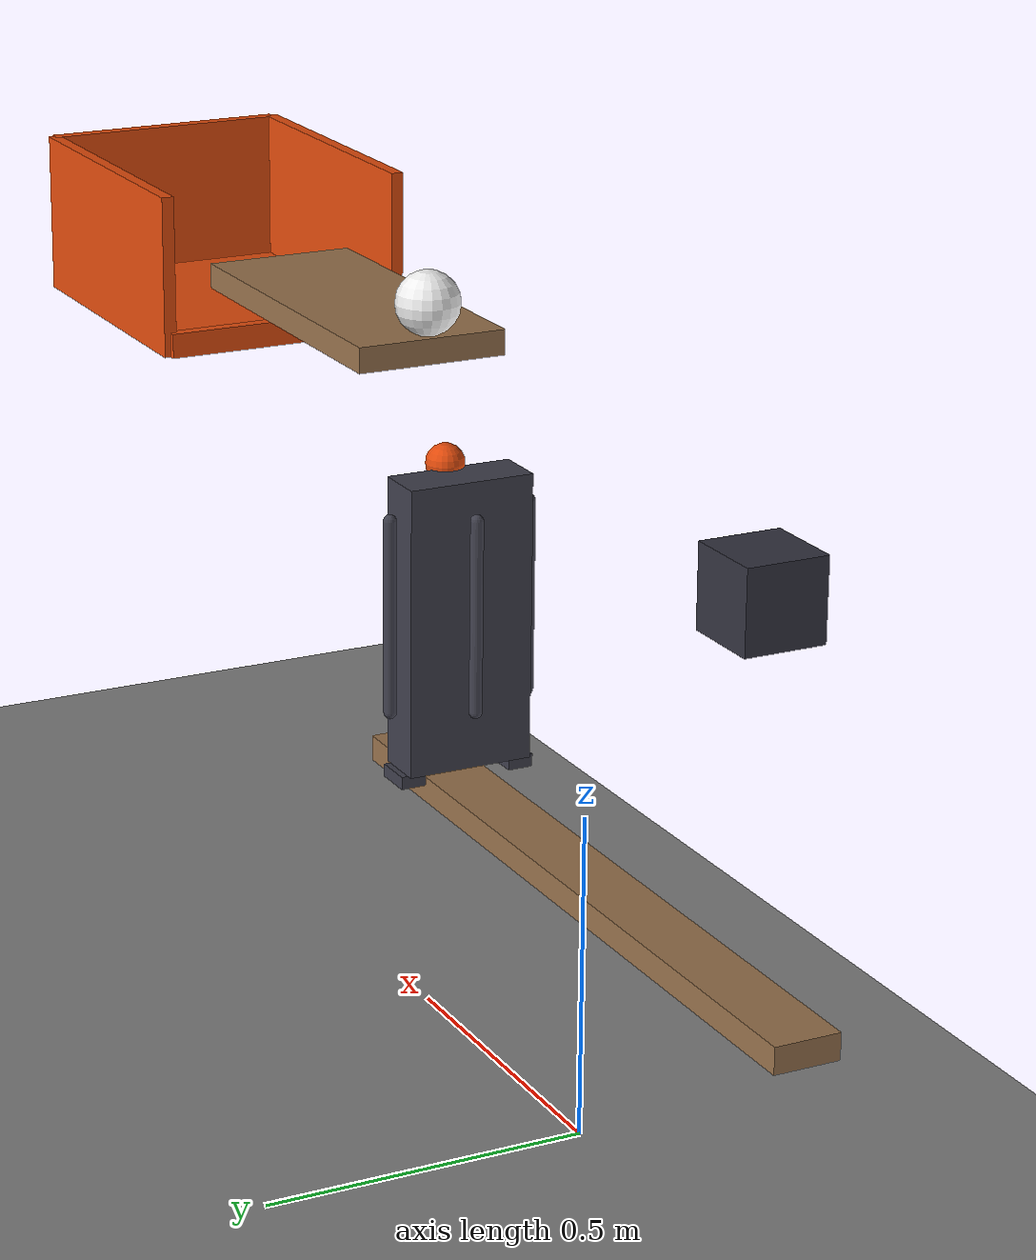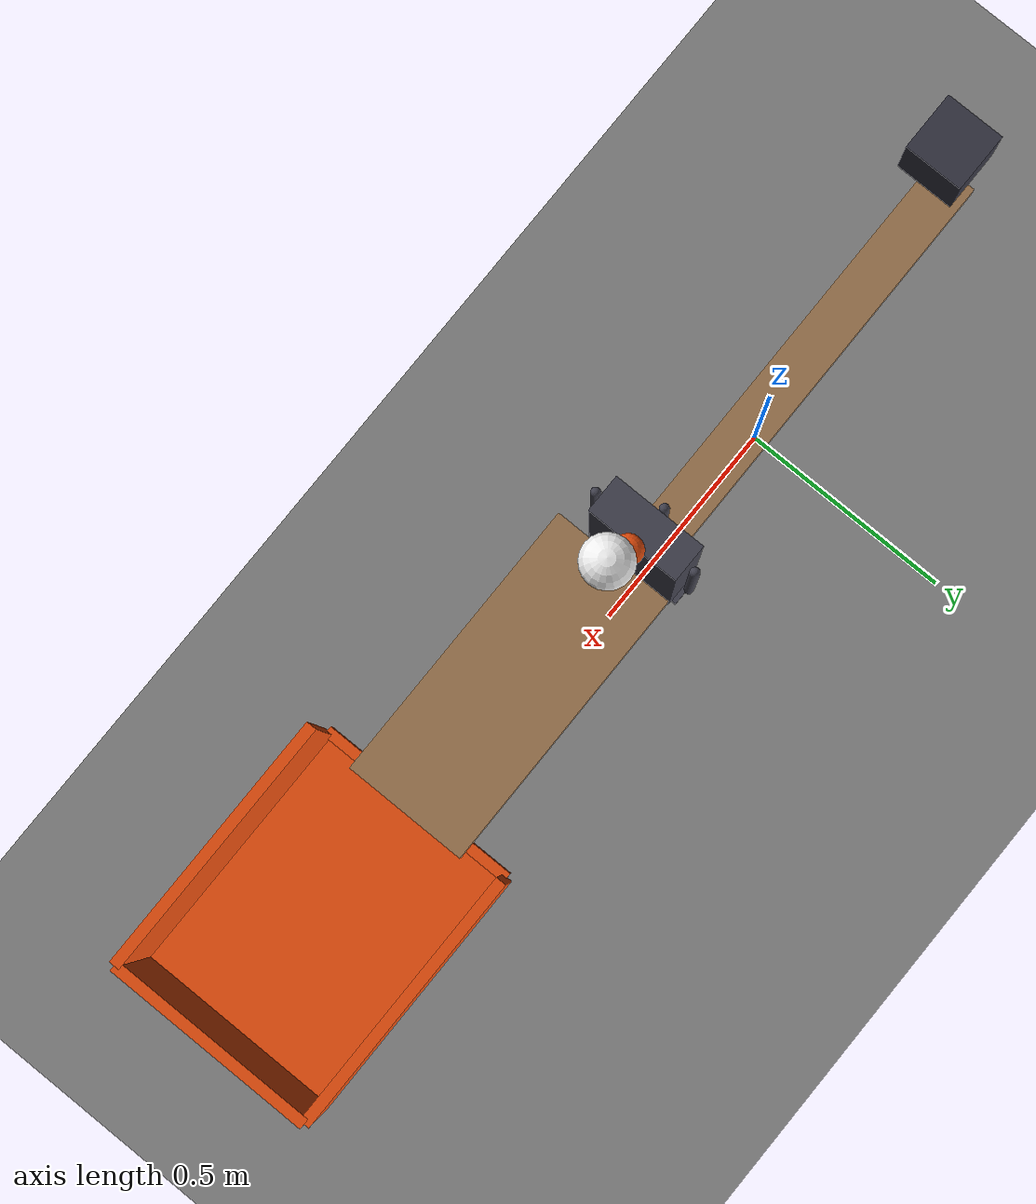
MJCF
<mujoco model="falling_weight_with_a_stout_guided_striker">
  <compiler angle="radian"/>
  <option timestep="0.002"/>
  <worldbody>
    <geom name="floor" type="plane" size="5 5 0.1" friction="0.8 0.005 0.002"/>
    <body name="lever" pos="0 0 0.4">
      <joint name="lever_hinge" type="hinge" pos="0 0 0" axis="0 1 0" limited="true" range="-0.20944 0" damping="0.05"/>
      <geom name="lever" type="box" pos="0 0 0" size="0.6 0.05 0.02" mass="0.6" friction="1 0.005 0.0001" solref="0.01 1" rgba="0.6 0.45 0.3 1"/>
    </body>
    <body name="weight" pos="-0.45 0 0.98">
      <freejoint/>
      <geom name="weight" type="box" pos="0 0 0" size="0.06 0.06 0.06" mass="4" friction="1 0.005 0.0001" solref="0.01 1" rgba="0.2 0.2 0.25 1"/>
    </body>
    <body name="left lift shoulder">
      <geom name="left lift shoulder" type="box" pos="0.4 0.09 0.435" size="0.03 0.02 0.01" friction="0 0 0" solref="0.01 1" rgba="0.25 0.25 0.3 1"/>
    </body>
    <body name="right lift shoulder">
      <geom name="right lift shoulder" type="box" pos="0.4 -0.09 0.435" size="0.03 0.02 0.01" friction="0 0 0" solref="0.01 1" rgba="0.25 0.25 0.3 1"/>
    </body>
    <body name="near lift guide">
      <geom name="near lift guide" type="capsule" size="0.01" fromto="0.345 0 0.54 0.345 0 0.84" friction="0 0 0" solref="0.01 1" rgba="0.25 0.25 0.3 1"/>
    </body>
    <body name="far lift guide">
      <geom name="far lift guide" type="capsule" size="0.01" fromto="0.455 0 0.54 0.455 0 0.84" friction="0 0 0" solref="0.01 1" rgba="0.25 0.25 0.3 1"/>
    </body>
    <body name="left lift guide">
      <geom name="left lift guide" type="capsule" size="0.01" fromto="0.4 0.115 0.54 0.4 0.115 0.84" friction="0 0 0" solref="0.01 1" rgba="0.25 0.25 0.3 1"/>
    </body>
    <body name="right lift guide">
      <geom name="right lift guide" type="capsule" size="0.01" fromto="0.4 -0.115 0.54 0.4 -0.115 0.84" friction="0 0 0" solref="0.01 1" rgba="0.25 0.25 0.3 1"/>
    </body>
    <body name="lift" pos="0.4 0 0.67">
      <freejoint/>
      <geom name="lift" type="box" pos="0 0 0" size="0.04 0.1 0.225" mass="0.96" friction="0 0 0" solref="0.01 1" rgba="0.25 0.25 0.3 1"/>
      <geom name="lift crown" type="sphere" pos="0.05 0 0.23" size="0.03" mass="0.04" friction="0.2 0 0" solref="0.01 1" rgba="0.9 0.3 0.05 1"/>
    </body>
    <body name="bridge">
      <geom name="bridge" type="box" pos="0.7715 0 1.06" size="0.2785 0.12 0.02" friction="0.6 0.001 0.0003" solref="0.01 1" rgba="0.6 0.45 0.3 1"/>
    </body>
    <body name="cup">
      <geom name="cup_base" type="box" pos="1.28 0 0.95" size="0.25 0.2 0.01" friction="1 0.02 0.02" solref="0.01 1" rgba="0.9 0.3 0.05 1"/>
      <geom name="cup_near_wall" type="box" pos="1.03 0 0.96" size="0.01 0.2 0.02" friction="1 0.02 0.02" solref="0.01 1" rgba="0.9 0.3 0.05 1"/>
      <geom name="cup_far_wall" type="box" pos="1.53 0 1.07" size="0.01 0.2 0.13" friction="1 0.02 0.02" solref="0.01 1" rgba="0.9 0.3 0.05 1"/>
      <geom name="cup_left_wall" type="box" pos="1.28 0.2 1.07" size="0.25 0.01 0.13" friction="1 0.02 0.02" solref="0.01 1" rgba="0.9 0.3 0.05 1"/>
      <geom name="cup_right_wall" type="box" pos="1.28 -0.2 1.07" size="0.25 0.01 0.13" friction="1 0.02 0.02" solref="0.01 1" rgba="0.9 0.3 0.05 1"/>
    </body>
    <body name="ball" pos="0.51 0 1.13">
      <freejoint/>
      <geom name="ball" type="sphere" pos="0 0 0" size="0.05" mass="0.06" condim="6" friction="0.6 0.001 0.0003" solref="0.01 1" rgba="0.95 0.95 0.95 1"/>
    </body>
  </worldbody>
  <keyframe>
    <key name="start" qpos="0 -0.45 0 0.98 1 0 0 0 0.4 0 0.67 1 0 0 0 0.51 0 1.13 1 0 0 0" qvel="0 0 0 0 0 0 0 0 0 0 0 0 0 0 0 0 0 0 0"/>
  </keyframe>
</mujoco>
